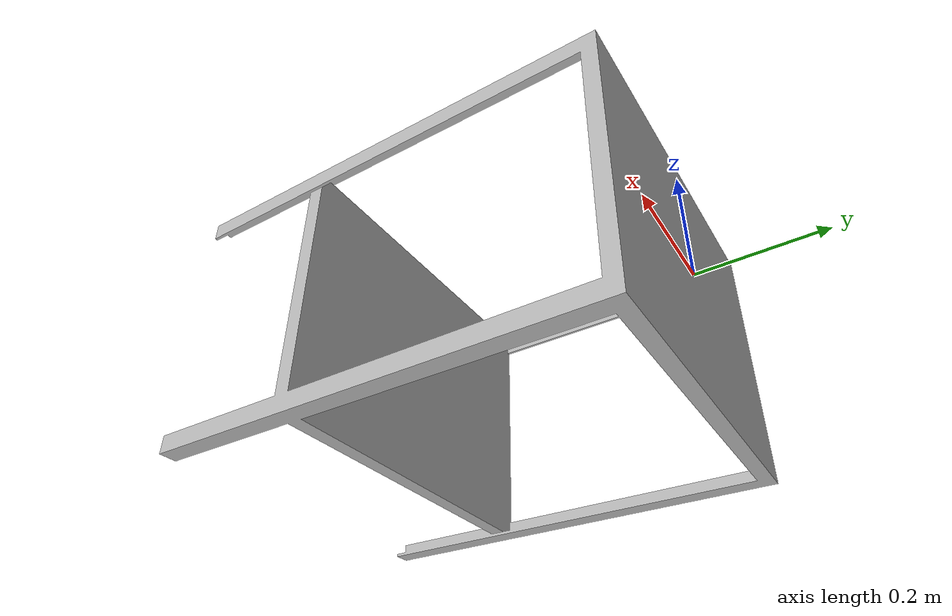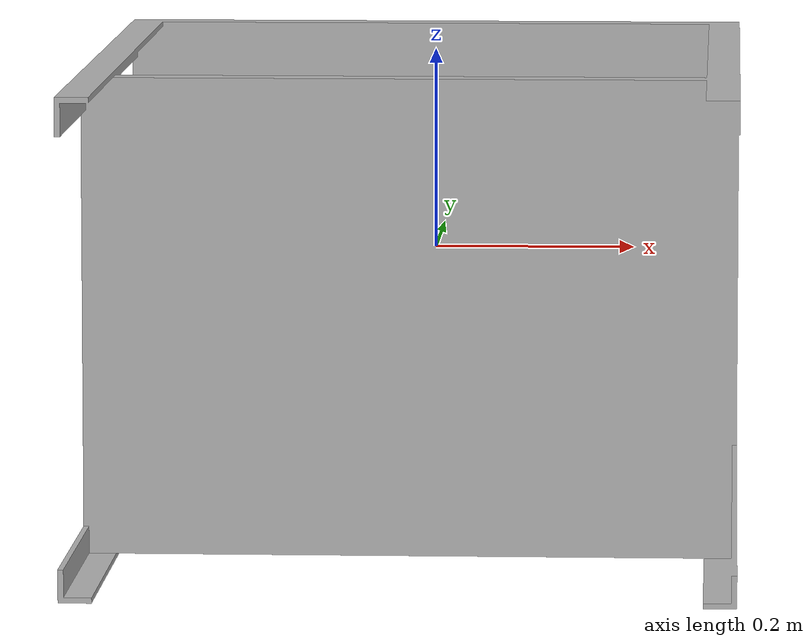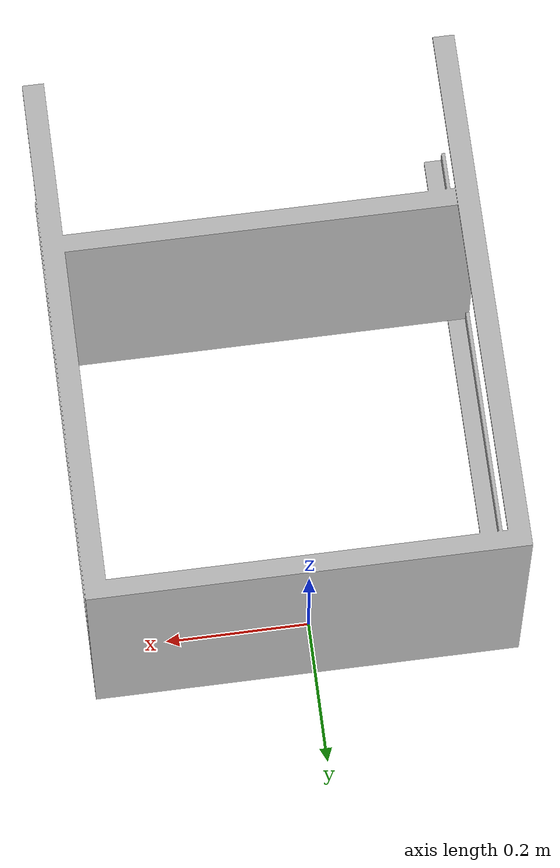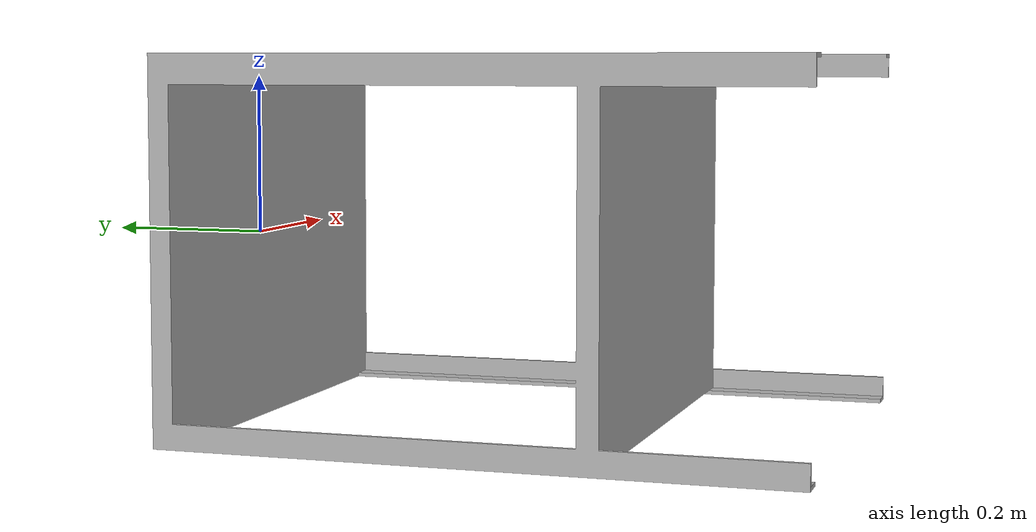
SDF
<?xml version="1.0" ?>
<sdf version="1.6">
  <model name="Adjustable Height Work Table">
    <static>true</static>
    <link name="link">
      <visual name="visual">
        <geometry>
          <mesh>
            <uri>model://Adjustable Height Work Table/meshes/Adjustable_Height_Work_Table.obj</uri>
          </mesh>
        </geometry>
      </visual>
      <collision name="collision">
        <geometry>
          <mesh>
            <uri>model://Adjustable Height Work Table/meshes/Adjustable_Height_Work_Table.obj</uri>
          </mesh>
        </geometry>
      </collision>
    </link>
  </model>
</sdf>
